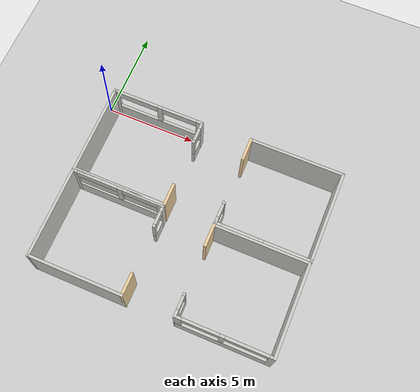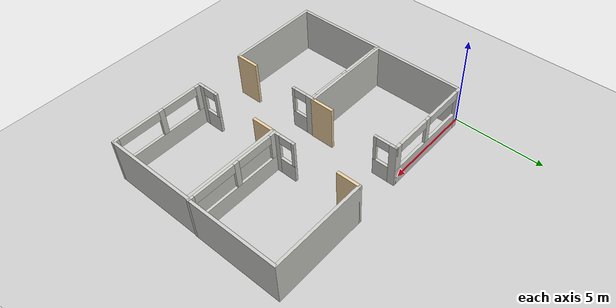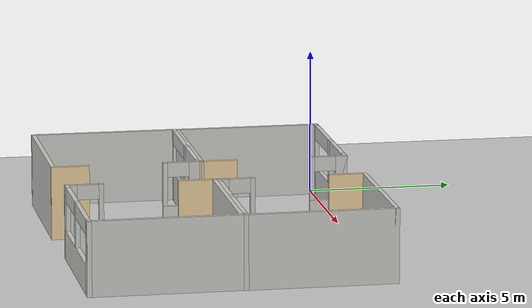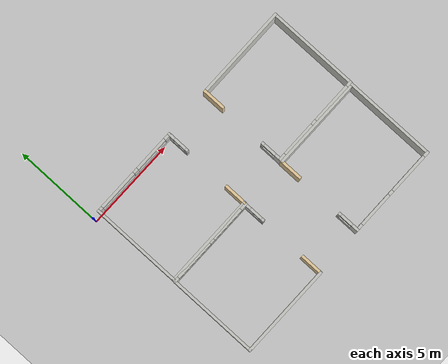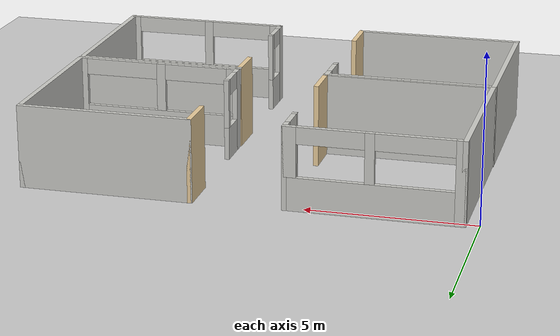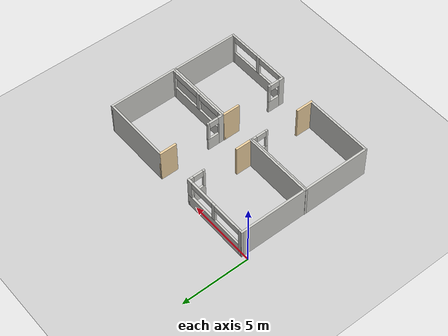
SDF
<sdf version="1.6">
 <world name="default">
  <model name="ground_plane">
   <static>1</static>
   <link name="link">
    <collision name="collision">
     <geometry><plane><normal>0 0 1</normal><size>100 100</size></plane></geometry>
     <surface>
      <contact><collide_bitmask>65535</collide_bitmask></contact>
      <friction><ode><mu>100</mu><mu2>50</mu2></ode></friction>
     </surface>
    </collision>
    <visual name="visual">
     <cast_shadows>0</cast_shadows>
     <geometry><plane><normal>0 0 1</normal><size>100 100</size></plane></geometry>
     <material>
      <script><uri>file://media/materials/scripts/gazebo.material</uri><name>Gazebo/Grey</name></script>
     </material>
    </visual>
   </link>
  </model>
  <model name="Bay_Area">
   <pose>2.96522 -7.39395 0 0 -0 0</pose>
   <link name="Wall_10">
    <collision name="Wall_10_Collision">
     <geometry><box><size>1.295 0.15 2.5</size></box></geometry>
     <pose>0 0 1.25 0 -0 0</pose>
    </collision>
    <visual name="Wall_10_Visual">
     <pose>0 0 1.25 0 -0 0</pose>
     <geometry><box><size>1.295 0.15 2.5</size></box></geometry>
     <material>
      <script><uri>file://media/materials/scripts/gazebo.material</uri><name>Gazebo/Grey</name></script>
      <ambient>0.921569 0.807843 0.615686 1</ambient>
     </material>
     <meta><layer>0</layer></meta>
    </visual>
    <pose>2.54 -1.8975 0 0 -0 1.5708</pose>
   </link>
   <link name="Wall_13">
    <collision name="Wall_13_Collision">
     <geometry><box><size>5.23 0.15 2.5</size></box></geometry>
     <pose>0 0 1.25 0 -0 0</pose>
    </collision>
    <visual name="Wall_13_Visual">
     <pose>0 0 1.25 0 -0 0</pose>
     <geometry><box><size>5.23 0.15 2.5</size></box></geometry>
     <material>
      <script><uri>file://media/materials/scripts/gazebo.material</uri><name>Gazebo/CeilingTiled</name></script>
      <ambient>0.921569 0.807843 0.615686 1</ambient>
     </material>
     <meta><layer>0</layer></meta>
    </visual>
    <pose>0 -2.47 0 0 -0 0</pose>
   </link>
   <link name="Wall_15">
    <pose>0 2.47 0 0 -0 0</pose>
    <visual name="Wall_15_Visual_0">
     <pose>-2.452 0 1.25 0 -0 0</pose>
     <geometry><box><size>0.326 0.15 2.5</size></box></geometry>
     <material>
      <script><uri>file://media/materials/scripts/gazebo.material</uri><name>Gazebo/CeilingTiled</name></script>
      <ambient>0.921569 0.807843 0.615686 1</ambient>
     </material>
     <meta><layer>0</layer></meta>
    </visual>
    <collision name="Wall_15_Collision_0">
     <geometry><box><size>0.326 0.15 2.5</size></box></geometry>
     <pose>-2.452 0 1.25 0 -0 0</pose>
    </collision>
    <visual name="Wall_15_Visual_1">
     <pose>0.163 0 0.5 0 -0 0</pose>
     <geometry><box><size>4.904 0.15 1</size></box></geometry>
     <material>
      <script><uri>file://media/materials/scripts/gazebo.material</uri><name>Gazebo/CeilingTiled</name></script>
      <ambient>0.921569 0.807843 0.615686 1</ambient>
     </material>
     <meta><layer>0</layer></meta>
    </visual>
    <collision name="Wall_15_Collision_1">
     <geometry><box><size>4.904 0.15 1</size></box></geometry>
     <pose>0.163 0 0.5 0 -0 0</pose>
    </collision>
    <visual name="Wall_15_Visual_2">
     <pose>0.111 0 1.75 0 -0 0</pose>
     <geometry><box><size>0.28 0.15 1.5</size></box></geometry>
     <material>
      <script><uri>file://media/materials/scripts/gazebo.material</uri><name>Gazebo/CeilingTiled</name></script>
      <ambient>0.921569 0.807843 0.615686 1</ambient>
     </material>
     <meta><layer>0</layer></meta>
    </visual>
    <collision name="Wall_15_Collision_2">
     <geometry><box><size>0.28 0.15 1.5</size></box></geometry>
     <pose>0.111 0 1.75 0 -0 0</pose>
    </collision>
    <visual name="Wall_15_Visual_3">
     <pose>2.408 0 1.75 0 -0 0</pose>
     <geometry><box><size>0.414 0.15 1.5</size></box></geometry>
     <material>
      <script><uri>file://media/materials/scripts/gazebo.material</uri><name>Gazebo/CeilingTiled</name></script>
      <ambient>0.921569 0.807843 0.615686 1</ambient>
     </material>
     <meta><layer>0</layer></meta>
    </visual>
    <collision name="Wall_15_Collision_3">
     <geometry><box><size>0.414 0.15 1.5</size></box></geometry>
     <pose>2.408 0 1.75 0 -0 0</pose>
    </collision>
    <visual name="Wall_15_Visual_4">
     <pose>-1.159 0 2.25 0 -0 0</pose>
     <geometry><box><size>2.26 0.15 0.5</size></box></geometry>
     <material>
      <script><uri>file://media/materials/scripts/gazebo.material</uri><name>Gazebo/CeilingTiled</name></script>
      <ambient>0.921569 0.807843 0.615686 1</ambient>
     </material>
     <meta><layer>0</layer></meta>
    </visual>
    <collision name="Wall_15_Collision_4">
     <geometry><box><size>2.26 0.15 0.5</size></box></geometry>
     <pose>-1.159 0 2.25 0 -0 0</pose>
    </collision>
    <visual name="Wall_15_Visual_5">
     <pose>1.226 0 2.25 0 -0 0</pose>
     <geometry><box><size>1.95 0.15 0.5</size></box></geometry>
     <material>
      <script><uri>file://media/materials/scripts/gazebo.material</uri><name>Gazebo/CeilingTiled</name></script>
      <ambient>0.921569 0.807843 0.615686 1</ambient>
     </material>
     <meta><layer>0</layer></meta>
    </visual>
    <collision name="Wall_15_Collision_5">
     <geometry><box><size>1.95 0.15 0.5</size></box></geometry>
     <pose>1.226 0 2.25 0 -0 0</pose>
    </collision>
   </link>
   <link name="Wall_17">
    <pose>2.54 1.8975 0 0 -0 -1.5708</pose>
    <visual name="Wall_17_Visual_0">
     <pose>-0.445 0 1.25 0 -0 0</pose>
     <geometry><box><size>0.405 0.15 2.5</size></box></geometry>
     <material>
      <script><uri>file://media/materials/scripts/gazebo.material</uri><name>Gazebo/CeilingTiled</name></script>
      <ambient>0.921569 0.807843 0.615686 1</ambient>
     </material>
     <meta><layer>0</layer></meta>
    </visual>
    <collision name="Wall_17_Collision_0">
     <geometry><box><size>0.405 0.15 2.5</size></box></geometry>
     <pose>-0.445 0 1.25 0 -0 0</pose>
    </collision>
    <visual name="Wall_17_Visual_1">
     <pose>0.2025 0 0.5 0 -0 0</pose>
     <geometry><box><size>0.89 0.15 1</size></box></geometry>
     <material>
      <script><uri>file://media/materials/scripts/gazebo.material</uri><name>Gazebo/CeilingTiled</name></script>
      <ambient>0.921569 0.807843 0.615686 1</ambient>
     </material>
     <meta><layer>0</layer></meta>
    </visual>
    <collision name="Wall_17_Collision_1">
     <geometry><box><size>0.89 0.15 1</size></box></geometry>
     <pose>0.2025 0 0.5 0 -0 0</pose>
    </collision>
    <visual name="Wall_17_Visual_2">
     <pose>0.5675 0 1.75 0 -0 0</pose>
     <geometry><box><size>0.16 0.15 1.5</size></box></geometry>
     <material>
      <script><uri>file://media/materials/scripts/gazebo.material</uri><name>Gazebo/CeilingTiled</name></script>
      <ambient>0.921569 0.807843 0.615686 1</ambient>
     </material>
     <meta><layer>0</layer></meta>
    </visual>
    <collision name="Wall_17_Collision_2">
     <geometry><box><size>0.16 0.15 1.5</size></box></geometry>
     <pose>0.5675 0 1.75 0 -0 0</pose>
    </collision>
    <visual name="Wall_17_Visual_3">
     <pose>0.1225 0 2.25 0 -0 0</pose>
     <geometry><box><size>0.73 0.15 0.5</size></box></geometry>
     <material>
      <script><uri>file://media/materials/scripts/gazebo.material</uri><name>Gazebo/CeilingTiled</name></script>
      <ambient>0.921569 0.807843 0.615686 1</ambient>
     </material>
     <meta><layer>0</layer></meta>
    </visual>
    <collision name="Wall_17_Collision_3">
     <geometry><box><size>0.73 0.15 0.5</size></box></geometry>
     <pose>0.1225 0 2.25 0 -0 0</pose>
    </collision>
   </link>
   <link name="Wall_8">
    <collision name="Wall_8_Collision">
     <geometry><box><size>5.09 0.15 2.5</size></box></geometry>
     <pose>0 0 1.25 0 -0 0</pose>
    </collision>
    <visual name="Wall_8_Visual">
     <pose>0 0 1.25 0 -0 0</pose>
     <geometry><box><size>5.09 0.15 2.5</size></box></geometry>
     <material>
      <script><uri>file://media/materials/scripts/gazebo.material</uri><name>Gazebo/CeilingTiled</name></script>
      <ambient>0.921569 0.807843 0.615686 1</ambient>
     </material>
     <meta><layer>0</layer></meta>
    </visual>
    <pose>-2.54 0 0 0 -0 -1.5708</pose>
   </link>
   <static>1</static>
  </model>
  <model name="Bay_Area_clone">
   <pose>2.98557 -2.35204 0 0 -0 0</pose>
   <link name="Wall_10">
    <collision name="Wall_10_Collision">
     <geometry><box><size>1.295 0.15 2.5</size></box></geometry>
     <pose>0 0 1.25 0 -0 0</pose>
    </collision>
    <visual name="Wall_10_Visual">
     <pose>0 0 1.25 0 -0 0</pose>
     <geometry><box><size>1.295 0.15 2.5</size></box></geometry>
     <material>
      <script><uri>file://media/materials/scripts/gazebo.material</uri><name>Gazebo/Grey</name></script>
      <ambient>0.921569 0.807843 0.615686 1</ambient>
     </material>
     <meta><layer>0</layer></meta>
    </visual>
    <pose>2.54 -1.8975 0 0 -0 1.5708</pose>
   </link>
   <link name="Wall_13">
    <collision name="Wall_13_Collision">
     <geometry><box><size>5.23 0.15 2.5</size></box></geometry>
     <pose>0 0 1.25 0 -0 0</pose>
    </collision>
    <visual name="Wall_13_Visual">
     <pose>0 0 1.25 0 -0 0</pose>
     <geometry><box><size>5.23 0.15 2.5</size></box></geometry>
     <material>
      <script><uri>file://media/materials/scripts/gazebo.material</uri><name>Gazebo/CeilingTiled</name></script>
      <ambient>0.921569 0.807843 0.615686 1</ambient>
     </material>
     <meta><layer>0</layer></meta>
    </visual>
    <pose>0 -2.47 0 0 -0 0</pose>
   </link>
   <link name="Wall_15">
    <pose>0 2.47 0 0 -0 0</pose>
    <visual name="Wall_15_Visual_0">
     <pose>-2.452 0 1.25 0 -0 0</pose>
     <geometry><box><size>0.326 0.15 2.5</size></box></geometry>
     <material>
      <script><uri>file://media/materials/scripts/gazebo.material</uri><name>Gazebo/CeilingTiled</name></script>
      <ambient>0.921569 0.807843 0.615686 1</ambient>
     </material>
     <meta><layer>0</layer></meta>
    </visual>
    <collision name="Wall_15_Collision_0">
     <geometry><box><size>0.326 0.15 2.5</size></box></geometry>
     <pose>-2.452 0 1.25 0 -0 0</pose>
    </collision>
    <visual name="Wall_15_Visual_1">
     <pose>0.163 0 0.5 0 -0 0</pose>
     <geometry><box><size>4.904 0.15 1</size></box></geometry>
     <material>
      <script><uri>file://media/materials/scripts/gazebo.material</uri><name>Gazebo/CeilingTiled</name></script>
      <ambient>0.921569 0.807843 0.615686 1</ambient>
     </material>
     <meta><layer>0</layer></meta>
    </visual>
    <collision name="Wall_15_Collision_1">
     <geometry><box><size>4.904 0.15 1</size></box></geometry>
     <pose>0.163 0 0.5 0 -0 0</pose>
    </collision>
    <visual name="Wall_15_Visual_2">
     <pose>0.111 0 1.75 0 -0 0</pose>
     <geometry><box><size>0.28 0.15 1.5</size></box></geometry>
     <material>
      <script><uri>file://media/materials/scripts/gazebo.material</uri><name>Gazebo/CeilingTiled</name></script>
      <ambient>0.921569 0.807843 0.615686 1</ambient>
     </material>
     <meta><layer>0</layer></meta>
    </visual>
    <collision name="Wall_15_Collision_2">
     <geometry><box><size>0.28 0.15 1.5</size></box></geometry>
     <pose>0.111 0 1.75 0 -0 0</pose>
    </collision>
    <visual name="Wall_15_Visual_3">
     <pose>2.408 0 1.75 0 -0 0</pose>
     <geometry><box><size>0.414 0.15 1.5</size></box></geometry>
     <material>
      <script><uri>file://media/materials/scripts/gazebo.material</uri><name>Gazebo/CeilingTiled</name></script>
      <ambient>0.921569 0.807843 0.615686 1</ambient>
     </material>
     <meta><layer>0</layer></meta>
    </visual>
    <collision name="Wall_15_Collision_3">
     <geometry><box><size>0.414 0.15 1.5</size></box></geometry>
     <pose>2.408 0 1.75 0 -0 0</pose>
    </collision>
    <visual name="Wall_15_Visual_4">
     <pose>-1.159 0 2.25 0 -0 0</pose>
     <geometry><box><size>2.26 0.15 0.5</size></box></geometry>
     <material>
      <script><uri>file://media/materials/scripts/gazebo.material</uri><name>Gazebo/CeilingTiled</name></script>
      <ambient>0.921569 0.807843 0.615686 1</ambient>
     </material>
     <meta><layer>0</layer></meta>
    </visual>
    <collision name="Wall_15_Collision_4">
     <geometry><box><size>2.26 0.15 0.5</size></box></geometry>
     <pose>-1.159 0 2.25 0 -0 0</pose>
    </collision>
    <visual name="Wall_15_Visual_5">
     <pose>1.226 0 2.25 0 -0 0</pose>
     <geometry><box><size>1.95 0.15 0.5</size></box></geometry>
     <material>
      <script><uri>file://media/materials/scripts/gazebo.material</uri><name>Gazebo/CeilingTiled</name></script>
      <ambient>0.921569 0.807843 0.615686 1</ambient>
     </material>
     <meta><layer>0</layer></meta>
    </visual>
    <collision name="Wall_15_Collision_5">
     <geometry><box><size>1.95 0.15 0.5</size></box></geometry>
     <pose>1.226 0 2.25 0 -0 0</pose>
    </collision>
   </link>
   <link name="Wall_17">
    <pose>2.54 1.8975 0 0 -0 -1.5708</pose>
    <visual name="Wall_17_Visual_0">
     <pose>-0.445 0 1.25 0 -0 0</pose>
     <geometry><box><size>0.405 0.15 2.5</size></box></geometry>
     <material>
      <script><uri>file://media/materials/scripts/gazebo.material</uri><name>Gazebo/CeilingTiled</name></script>
      <ambient>0.921569 0.807843 0.615686 1</ambient>
     </material>
     <meta><layer>0</layer></meta>
    </visual>
    <collision name="Wall_17_Collision_0">
     <geometry><box><size>0.405 0.15 2.5</size></box></geometry>
     <pose>-0.445 0 1.25 0 -0 0</pose>
    </collision>
    <visual name="Wall_17_Visual_1">
     <pose>0.2025 0 0.5 0 -0 0</pose>
     <geometry><box><size>0.89 0.15 1</size></box></geometry>
     <material>
      <script><uri>file://media/materials/scripts/gazebo.material</uri><name>Gazebo/CeilingTiled</name></script>
      <ambient>0.921569 0.807843 0.615686 1</ambient>
     </material>
     <meta><layer>0</layer></meta>
    </visual>
    <collision name="Wall_17_Collision_1">
     <geometry><box><size>0.89 0.15 1</size></box></geometry>
     <pose>0.2025 0 0.5 0 -0 0</pose>
    </collision>
    <visual name="Wall_17_Visual_2">
     <pose>0.5675 0 1.75 0 -0 0</pose>
     <geometry><box><size>0.16 0.15 1.5</size></box></geometry>
     <material>
      <script><uri>file://media/materials/scripts/gazebo.material</uri><name>Gazebo/CeilingTiled</name></script>
      <ambient>0.921569 0.807843 0.615686 1</ambient>
     </material>
     <meta><layer>0</layer></meta>
    </visual>
    <collision name="Wall_17_Collision_2">
     <geometry><box><size>0.16 0.15 1.5</size></box></geometry>
     <pose>0.5675 0 1.75 0 -0 0</pose>
    </collision>
    <visual name="Wall_17_Visual_3">
     <pose>0.1225 0 2.25 0 -0 0</pose>
     <geometry><box><size>0.73 0.15 0.5</size></box></geometry>
     <material>
      <script><uri>file://media/materials/scripts/gazebo.material</uri><name>Gazebo/CeilingTiled</name></script>
      <ambient>0.921569 0.807843 0.615686 1</ambient>
     </material>
     <meta><layer>0</layer></meta>
    </visual>
    <collision name="Wall_17_Collision_3">
     <geometry><box><size>0.73 0.15 0.5</size></box></geometry>
     <pose>0.1225 0 2.25 0 -0 0</pose>
    </collision>
   </link>
   <link name="Wall_8">
    <collision name="Wall_8_Collision">
     <geometry><box><size>5.09 0.15 2.5</size></box></geometry>
     <pose>0 0 1.25 0 -0 0</pose>
    </collision>
    <visual name="Wall_8_Visual">
     <pose>0 0 1.25 0 -0 0</pose>
     <geometry><box><size>5.09 0.15 2.5</size></box></geometry>
     <material>
      <script><uri>file://media/materials/scripts/gazebo.material</uri><name>Gazebo/CeilingTiled</name></script>
      <ambient>0.921569 0.807843 0.615686 1</ambient>
     </material>
     <meta><layer>0</layer></meta>
    </visual>
    <pose>-2.54 0 0 0 -0 -1.5708</pose>
   </link>
   <static>1</static>
  </model>
  <model name="Bay_Area_clone_1">
   <pose>10.7866 -7.30127 0 0 0 -3.13932</pose>
   <link name="Wall_10">
    <collision name="Wall_10_Collision">
     <geometry><box><size>1.295 0.15 2.5</size></box></geometry>
     <pose>0 0 1.25 0 -0 0</pose>
    </collision>
    <visual name="Wall_10_Visual">
     <pose>0 0 1.25 0 -0 0</pose>
     <geometry><box><size>1.295 0.15 2.5</size></box></geometry>
     <material>
      <script><uri>file://media/materials/scripts/gazebo.material</uri><name>Gazebo/Grey</name></script>
      <ambient>0.921569 0.807843 0.615686 1</ambient>
     </material>
     <meta><layer>0</layer></meta>
    </visual>
    <pose>2.54 -1.8975 0 0 -0 1.5708</pose>
   </link>
   <link name="Wall_13">
    <collision name="Wall_13_Collision">
     <geometry><box><size>5.23 0.15 2.5</size></box></geometry>
     <pose>0 0 1.25 0 -0 0</pose>
    </collision>
    <visual name="Wall_13_Visual">
     <pose>0 0 1.25 0 -0 0</pose>
     <geometry><box><size>5.23 0.15 2.5</size></box></geometry>
     <material>
      <script><uri>file://media/materials/scripts/gazebo.material</uri><name>Gazebo/CeilingTiled</name></script>
      <ambient>0.921569 0.807843 0.615686 1</ambient>
     </material>
     <meta><layer>0</layer></meta>
    </visual>
    <pose>0 -2.47 0 0 -0 0</pose>
   </link>
   <link name="Wall_15">
    <pose>0 2.47 0 0 -0 0</pose>
    <visual name="Wall_15_Visual_0">
     <pose>-2.452 0 1.25 0 -0 0</pose>
     <geometry><box><size>0.326 0.15 2.5</size></box></geometry>
     <material>
      <script><uri>file://media/materials/scripts/gazebo.material</uri><name>Gazebo/CeilingTiled</name></script>
      <ambient>0.921569 0.807843 0.615686 1</ambient>
     </material>
     <meta><layer>0</layer></meta>
    </visual>
    <collision name="Wall_15_Collision_0">
     <geometry><box><size>0.326 0.15 2.5</size></box></geometry>
     <pose>-2.452 0 1.25 0 -0 0</pose>
    </collision>
    <visual name="Wall_15_Visual_1">
     <pose>0.163 0 0.5 0 -0 0</pose>
     <geometry><box><size>4.904 0.15 1</size></box></geometry>
     <material>
      <script><uri>file://media/materials/scripts/gazebo.material</uri><name>Gazebo/CeilingTiled</name></script>
      <ambient>0.921569 0.807843 0.615686 1</ambient>
     </material>
     <meta><layer>0</layer></meta>
    </visual>
    <collision name="Wall_15_Collision_1">
     <geometry><box><size>4.904 0.15 1</size></box></geometry>
     <pose>0.163 0 0.5 0 -0 0</pose>
    </collision>
    <visual name="Wall_15_Visual_2">
     <pose>0.111 0 1.75 0 -0 0</pose>
     <geometry><box><size>0.28 0.15 1.5</size></box></geometry>
     <material>
      <script><uri>file://media/materials/scripts/gazebo.material</uri><name>Gazebo/CeilingTiled</name></script>
      <ambient>0.921569 0.807843 0.615686 1</ambient>
     </material>
     <meta><layer>0</layer></meta>
    </visual>
    <collision name="Wall_15_Collision_2">
     <geometry><box><size>0.28 0.15 1.5</size></box></geometry>
     <pose>0.111 0 1.75 0 -0 0</pose>
    </collision>
    <visual name="Wall_15_Visual_3">
     <pose>2.408 0 1.75 0 -0 0</pose>
     <geometry><box><size>0.414 0.15 1.5</size></box></geometry>
     <material>
      <script><uri>file://media/materials/scripts/gazebo.material</uri><name>Gazebo/CeilingTiled</name></script>
      <ambient>0.921569 0.807843 0.615686 1</ambient>
     </material>
     <meta><layer>0</layer></meta>
    </visual>
    <collision name="Wall_15_Collision_3">
     <geometry><box><size>0.414 0.15 1.5</size></box></geometry>
     <pose>2.408 0 1.75 0 -0 0</pose>
    </collision>
    <visual name="Wall_15_Visual_4">
     <pose>-1.159 0 2.25 0 -0 0</pose>
     <geometry><box><size>2.26 0.15 0.5</size></box></geometry>
     <material>
      <script><uri>file://media/materials/scripts/gazebo.material</uri><name>Gazebo/CeilingTiled</name></script>
      <ambient>0.921569 0.807843 0.615686 1</ambient>
     </material>
     <meta><layer>0</layer></meta>
    </visual>
    <collision name="Wall_15_Collision_4">
     <geometry><box><size>2.26 0.15 0.5</size></box></geometry>
     <pose>-1.159 0 2.25 0 -0 0</pose>
    </collision>
    <visual name="Wall_15_Visual_5">
     <pose>1.226 0 2.25 0 -0 0</pose>
     <geometry><box><size>1.95 0.15 0.5</size></box></geometry>
     <material>
      <script><uri>file://media/materials/scripts/gazebo.material</uri><name>Gazebo/CeilingTiled</name></script>
      <ambient>0.921569 0.807843 0.615686 1</ambient>
     </material>
     <meta><layer>0</layer></meta>
    </visual>
    <collision name="Wall_15_Collision_5">
     <geometry><box><size>1.95 0.15 0.5</size></box></geometry>
     <pose>1.226 0 2.25 0 -0 0</pose>
    </collision>
   </link>
   <link name="Wall_17">
    <pose>2.54 1.8975 0 0 -0 -1.5708</pose>
    <visual name="Wall_17_Visual_0">
     <pose>-0.445 0 1.25 0 -0 0</pose>
     <geometry><box><size>0.405 0.15 2.5</size></box></geometry>
     <material>
      <script><uri>file://media/materials/scripts/gazebo.material</uri><name>Gazebo/CeilingTiled</name></script>
      <ambient>0.921569 0.807843 0.615686 1</ambient>
     </material>
     <meta><layer>0</layer></meta>
    </visual>
    <collision name="Wall_17_Collision_0">
     <geometry><box><size>0.405 0.15 2.5</size></box></geometry>
     <pose>-0.445 0 1.25 0 -0 0</pose>
    </collision>
    <visual name="Wall_17_Visual_1">
     <pose>0.2025 0 0.5 0 -0 0</pose>
     <geometry><box><size>0.89 0.15 1</size></box></geometry>
     <material>
      <script><uri>file://media/materials/scripts/gazebo.material</uri><name>Gazebo/CeilingTiled</name></script>
      <ambient>0.921569 0.807843 0.615686 1</ambient>
     </material>
     <meta><layer>0</layer></meta>
    </visual>
    <collision name="Wall_17_Collision_1">
     <geometry><box><size>0.89 0.15 1</size></box></geometry>
     <pose>0.2025 0 0.5 0 -0 0</pose>
    </collision>
    <visual name="Wall_17_Visual_2">
     <pose>0.5675 0 1.75 0 -0 0</pose>
     <geometry><box><size>0.16 0.15 1.5</size></box></geometry>
     <material>
      <script><uri>file://media/materials/scripts/gazebo.material</uri><name>Gazebo/CeilingTiled</name></script>
      <ambient>0.921569 0.807843 0.615686 1</ambient>
     </material>
     <meta><layer>0</layer></meta>
    </visual>
    <collision name="Wall_17_Collision_2">
     <geometry><box><size>0.16 0.15 1.5</size></box></geometry>
     <pose>0.5675 0 1.75 0 -0 0</pose>
    </collision>
    <visual name="Wall_17_Visual_3">
     <pose>0.1225 0 2.25 0 -0 0</pose>
     <geometry><box><size>0.73 0.15 0.5</size></box></geometry>
     <material>
      <script><uri>file://media/materials/scripts/gazebo.material</uri><name>Gazebo/CeilingTiled</name></script>
      <ambient>0.921569 0.807843 0.615686 1</ambient>
     </material>
     <meta><layer>0</layer></meta>
    </visual>
    <collision name="Wall_17_Collision_3">
     <geometry><box><size>0.73 0.15 0.5</size></box></geometry>
     <pose>0.1225 0 2.25 0 -0 0</pose>
    </collision>
   </link>
   <link name="Wall_8">
    <collision name="Wall_8_Collision">
     <geometry><box><size>5.09 0.15 2.5</size></box></geometry>
     <pose>0 0 1.25 0 -0 0</pose>
    </collision>
    <visual name="Wall_8_Visual">
     <pose>0 0 1.25 0 -0 0</pose>
     <geometry><box><size>5.09 0.15 2.5</size></box></geometry>
     <material>
      <script><uri>file://media/materials/scripts/gazebo.material</uri><name>Gazebo/CeilingTiled</name></script>
      <ambient>0.921569 0.807843 0.615686 1</ambient>
     </material>
     <meta><layer>0</layer></meta>
    </visual>
    <pose>-2.54 0 0 0 -0 -1.5708</pose>
   </link>
   <static>1</static>
  </model>
  <model name="Bay_Area_clone_1_clone">
   <pose>10.7983 -2.22507 0 0 0 -3.13932</pose>
   <link name="Wall_10">
    <collision name="Wall_10_Collision">
     <geometry><box><size>1.295 0.15 2.5</size></box></geometry>
     <pose>0 0 1.25 0 -0 0</pose>
    </collision>
    <visual name="Wall_10_Visual">
     <pose>0 0 1.25 0 -0 0</pose>
     <geometry><box><size>1.295 0.15 2.5</size></box></geometry>
     <material>
      <script><uri>file://media/materials/scripts/gazebo.material</uri><name>Gazebo/Grey</name></script>
      <ambient>0.921569 0.807843 0.615686 1</ambient>
     </material>
     <meta><layer>0</layer></meta>
    </visual>
    <pose>2.54 -1.8975 0 0 -0 1.5708</pose>
   </link>
   <link name="Wall_13">
    <collision name="Wall_13_Collision">
     <geometry><box><size>5.23 0.15 2.5</size></box></geometry>
     <pose>0 0 1.25 0 -0 0</pose>
    </collision>
    <visual name="Wall_13_Visual">
     <pose>0 0 1.25 0 -0 0</pose>
     <geometry><box><size>5.23 0.15 2.5</size></box></geometry>
     <material>
      <script><uri>file://media/materials/scripts/gazebo.material</uri><name>Gazebo/CeilingTiled</name></script>
      <ambient>0.921569 0.807843 0.615686 1</ambient>
     </material>
     <meta><layer>0</layer></meta>
    </visual>
    <pose>0 -2.47 0 0 -0 0</pose>
   </link>
   <link name="Wall_15">
    <pose>0 2.47 0 0 -0 0</pose>
    <visual name="Wall_15_Visual_0">
     <pose>-2.452 0 1.25 0 -0 0</pose>
     <geometry><box><size>0.326 0.15 2.5</size></box></geometry>
     <material>
      <script><uri>file://media/materials/scripts/gazebo.material</uri><name>Gazebo/CeilingTiled</name></script>
      <ambient>0.921569 0.807843 0.615686 1</ambient>
     </material>
     <meta><layer>0</layer></meta>
    </visual>
    <collision name="Wall_15_Collision_0">
     <geometry><box><size>0.326 0.15 2.5</size></box></geometry>
     <pose>-2.452 0 1.25 0 -0 0</pose>
    </collision>
    <visual name="Wall_15_Visual_1">
     <pose>0.163 0 0.5 0 -0 0</pose>
     <geometry><box><size>4.904 0.15 1</size></box></geometry>
     <material>
      <script><uri>file://media/materials/scripts/gazebo.material</uri><name>Gazebo/CeilingTiled</name></script>
      <ambient>0.921569 0.807843 0.615686 1</ambient>
     </material>
     <meta><layer>0</layer></meta>
    </visual>
    <collision name="Wall_15_Collision_1">
     <geometry><box><size>4.904 0.15 1</size></box></geometry>
     <pose>0.163 0 0.5 0 -0 0</pose>
    </collision>
    <visual name="Wall_15_Visual_2">
     <pose>0.111 0 1.75 0 -0 0</pose>
     <geometry><box><size>0.28 0.15 1.5</size></box></geometry>
     <material>
      <script><uri>file://media/materials/scripts/gazebo.material</uri><name>Gazebo/CeilingTiled</name></script>
      <ambient>0.921569 0.807843 0.615686 1</ambient>
     </material>
     <meta><layer>0</layer></meta>
    </visual>
    <collision name="Wall_15_Collision_2">
     <geometry><box><size>0.28 0.15 1.5</size></box></geometry>
     <pose>0.111 0 1.75 0 -0 0</pose>
    </collision>
    <visual name="Wall_15_Visual_3">
     <pose>2.408 0 1.75 0 -0 0</pose>
     <geometry><box><size>0.414 0.15 1.5</size></box></geometry>
     <material>
      <script><uri>file://media/materials/scripts/gazebo.material</uri><name>Gazebo/CeilingTiled</name></script>
      <ambient>0.921569 0.807843 0.615686 1</ambient>
     </material>
     <meta><layer>0</layer></meta>
    </visual>
    <collision name="Wall_15_Collision_3">
     <geometry><box><size>0.414 0.15 1.5</size></box></geometry>
     <pose>2.408 0 1.75 0 -0 0</pose>
    </collision>
    <visual name="Wall_15_Visual_4">
     <pose>-1.159 0 2.25 0 -0 0</pose>
     <geometry><box><size>2.26 0.15 0.5</size></box></geometry>
     <material>
      <script><uri>file://media/materials/scripts/gazebo.material</uri><name>Gazebo/CeilingTiled</name></script>
      <ambient>0.921569 0.807843 0.615686 1</ambient>
     </material>
     <meta><layer>0</layer></meta>
    </visual>
    <collision name="Wall_15_Collision_4">
     <geometry><box><size>2.26 0.15 0.5</size></box></geometry>
     <pose>-1.159 0 2.25 0 -0 0</pose>
    </collision>
    <visual name="Wall_15_Visual_5">
     <pose>1.226 0 2.25 0 -0 0</pose>
     <geometry><box><size>1.95 0.15 0.5</size></box></geometry>
     <material>
      <script><uri>file://media/materials/scripts/gazebo.material</uri><name>Gazebo/CeilingTiled</name></script>
      <ambient>0.921569 0.807843 0.615686 1</ambient>
     </material>
     <meta><layer>0</layer></meta>
    </visual>
    <collision name="Wall_15_Collision_5">
     <geometry><box><size>1.95 0.15 0.5</size></box></geometry>
     <pose>1.226 0 2.25 0 -0 0</pose>
    </collision>
   </link>
   <link name="Wall_17">
    <pose>2.54 1.8975 0 0 -0 -1.5708</pose>
    <visual name="Wall_17_Visual_0">
     <pose>-0.445 0 1.25 0 -0 0</pose>
     <geometry><box><size>0.405 0.15 2.5</size></box></geometry>
     <material>
      <script><uri>file://media/materials/scripts/gazebo.material</uri><name>Gazebo/CeilingTiled</name></script>
      <ambient>0.921569 0.807843 0.615686 1</ambient>
     </material>
     <meta><layer>0</layer></meta>
    </visual>
    <collision name="Wall_17_Collision_0">
     <geometry><box><size>0.405 0.15 2.5</size></box></geometry>
     <pose>-0.445 0 1.25 0 -0 0</pose>
    </collision>
    <visual name="Wall_17_Visual_1">
     <pose>0.2025 0 0.5 0 -0 0</pose>
     <geometry><box><size>0.89 0.15 1</size></box></geometry>
     <material>
      <script><uri>file://media/materials/scripts/gazebo.material</uri><name>Gazebo/CeilingTiled</name></script>
      <ambient>0.921569 0.807843 0.615686 1</ambient>
     </material>
     <meta><layer>0</layer></meta>
    </visual>
    <collision name="Wall_17_Collision_1">
     <geometry><box><size>0.89 0.15 1</size></box></geometry>
     <pose>0.2025 0 0.5 0 -0 0</pose>
    </collision>
    <visual name="Wall_17_Visual_2">
     <pose>0.5675 0 1.75 0 -0 0</pose>
     <geometry><box><size>0.16 0.15 1.5</size></box></geometry>
     <material>
      <script><uri>file://media/materials/scripts/gazebo.material</uri><name>Gazebo/CeilingTiled</name></script>
      <ambient>0.921569 0.807843 0.615686 1</ambient>
     </material>
     <meta><layer>0</layer></meta>
    </visual>
    <collision name="Wall_17_Collision_2">
     <geometry><box><size>0.16 0.15 1.5</size></box></geometry>
     <pose>0.5675 0 1.75 0 -0 0</pose>
    </collision>
    <visual name="Wall_17_Visual_3">
     <pose>0.1225 0 2.25 0 -0 0</pose>
     <geometry><box><size>0.73 0.15 0.5</size></box></geometry>
     <material>
      <script><uri>file://media/materials/scripts/gazebo.material</uri><name>Gazebo/CeilingTiled</name></script>
      <ambient>0.921569 0.807843 0.615686 1</ambient>
     </material>
     <meta><layer>0</layer></meta>
    </visual>
    <collision name="Wall_17_Collision_3">
     <geometry><box><size>0.73 0.15 0.5</size></box></geometry>
     <pose>0.1225 0 2.25 0 -0 0</pose>
    </collision>
   </link>
   <link name="Wall_8">
    <collision name="Wall_8_Collision">
     <geometry><box><size>5.09 0.15 2.5</size></box></geometry>
     <pose>0 0 1.25 0 -0 0</pose>
    </collision>
    <visual name="Wall_8_Visual">
     <pose>0 0 1.25 0 -0 0</pose>
     <geometry><box><size>5.09 0.15 2.5</size></box></geometry>
     <material>
      <script><uri>file://media/materials/scripts/gazebo.material</uri><name>Gazebo/CeilingTiled</name></script>
      <ambient>0.921569 0.807843 0.615686 1</ambient>
     </material>
     <meta><layer>0</layer></meta>
    </visual>
    <pose>-2.54 0 0 0 -0 -1.5708</pose>
   </link>
   <static>1</static>
  </model>
 </world>
</sdf>
